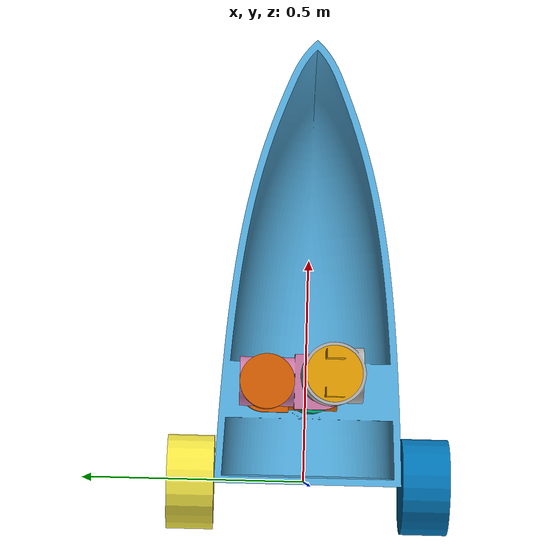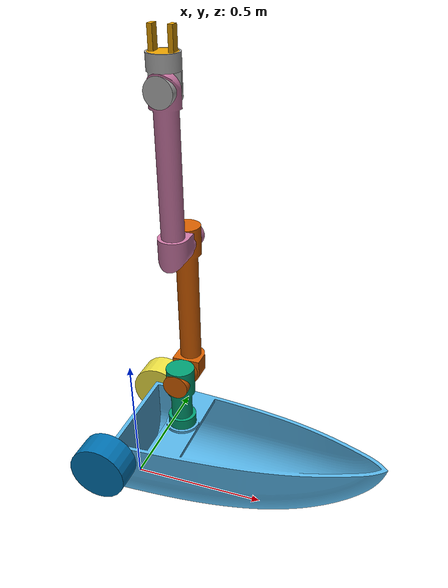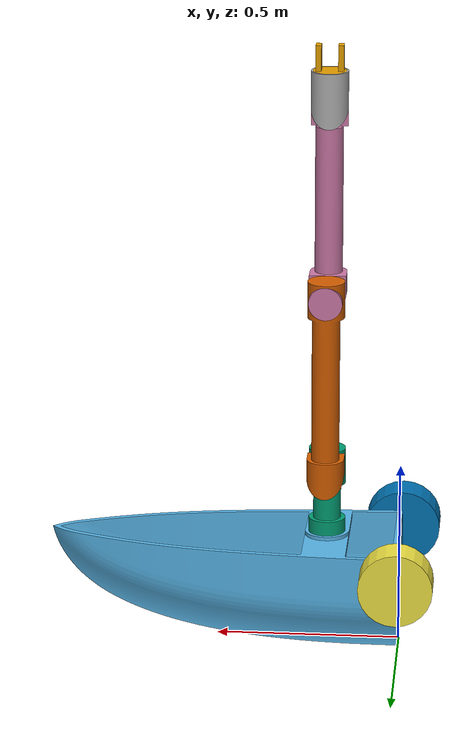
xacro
<?xml version="1.0" ?>

<robot name="robotikk_prosjekt" xmlns:xacro="http://ros.org/wiki/xacro">
    <xacro:include filename="$(find robotikk_prosjekt)/urdf/common_macros.xacro" />
    <xacro:include filename="$(find robotikk_prosjekt)/urdf/robot_control.gazebo.xacro" />
    <!-- CTRL + SHIFT + 7 to comment/uncomment marked code! -->
    <xacro:property name="density_pla" value="600" />

    <!-- MOBILE BOAT PLATFORM -->

    <link name="boat_footprint"/>

    <!-- MOBILE BOAT BASE -->

    <joint name="base_joint" type="fixed">
        <parent link="boat_footprint"/>
        <child link="mobile_boat_link" />
        <origin xyz="0 0 0" rpy="0 0 0"/>
    </joint>

    <link name="mobile_boat_link">
        <visual>
            <origin xyz="0 0 0" rpy="0 0 0"/>
            <geometry>
                <mesh filename="$(find robotikk_prosjekt)/meshes/BoatVisualMesh.stl" scale="0.001 0.001 0.001"/>
            </geometry>
        </visual>
        <collision>
            <origin xyz="0 0 0" rpy="0 0 0"/>
            <geometry>
                <mesh filename="$(find robotikk_prosjekt)/meshes/BoatColitionMesh.stl" scale="0.001 0.001 0.001"/>
            </geometry>
        </collision>
        <xacro:inertial_box length="1.0" width="0.400" height="0.300" density="${density_pla*10}">
            <origin xyz="0 0 0" rpy="0 0 0"/>
        </xacro:inertial_box>
    </link>

    <!-- ARM BASE -->

    <joint type="continuous" name="arm_base_joint">
        <origin xyz="0.2 0 0.3" rpy="0 0 0"/>
        <child link="arm_base_link"/>
        <parent link="mobile_boat_link"/>
        <axis xyz="0 0 1" rpy="0 0 0"/>
        <limit effort="1000" velocity="1000"/>
        <dynamics damping="0.7" friction="100.0"/>
    </joint>

    <link name="arm_base_link">
        <visual>
            <origin xyz="0 0 0" rpy="0 0 0"/>
            <geometry>
                <mesh filename="$(find robotikk_prosjekt)/meshes/BaseJoint.stl" scale="0.001 0.001 0.001"/>
            </geometry>
        </visual>
        <collision>
            <origin xyz="0 0 ${0.25/2}" rpy="0 0 0"/>
            <geometry>
                <cylinder length="0.25" radius="${0.1/2}" />
            </geometry>
        </collision>
        <xacro:inertial_cylinder radius="${0.1/2}" length="0.2" density="${density_pla}">
            <origin xyz="0 0 0" rpy="0 0 0"/>
        </xacro:inertial_cylinder>
    </link>

    <!-- LEFT WHEEL -->

    <joint type="continuous" name="left_wheel_joint">
        <origin xyz="0 ${0.2 + 0.1 / 2} 0.25" rpy="-${pi/2} 0 0"/>
        <child link="left_wheel_link"/>
        <parent link="mobile_boat_link"/>
        <axis xyz="0 0 1" rpy="0 0 0"/>
        <limit effort="1000" velocity="1000"/>
        <dynamics damping="0.7" friction="1.0"/>
    </joint>

    <link name="left_wheel_link">
        <visual>
            <origin xyz="0 0 0" rpy="0 0 0"/>
            <geometry>
                <cylinder length="0.1" radius="${0.201/2}" />
            </geometry>
        </visual>
        <collision>
            <origin xyz="0 0 0" rpy="0 0 0"/>
            <geometry>
                <cylinder length="0.1" radius="${0.201/2}" />
            </geometry>
        </collision>
        <xacro:inertial_box length="0.25" width="${0.2/2}" height="${0.2/2}" density="${density_pla}">
            <origin xyz="0 0 0" rpy="0 0 0"/>
        </xacro:inertial_box>
    </link>

    <!-- RIGHT WHEEL -->

    <joint type="continuous" name="right_wheel_joint">
        <origin xyz="0 -${0.2 + 0.1 / 2} 0.25" rpy="-${pi/2} 0 0"/>
        <child link="right_wheel_link"/>
        <parent link="mobile_boat_link"/>
        <axis xyz="0 0 1" rpy="0 0 0"/>
        <limit effort="1000" velocity="1000"/>
        <dynamics damping="0.7" friction="1.0"/>
    </joint>

    <link name="right_wheel_link">
        <visual>
            <origin xyz="0 0 0" rpy="0 0 0"/>
            <geometry>
                <cylinder length="0.1" radius="${0.205/2}" />
            </geometry>
        </visual>
        <collision>
            <origin xyz="0 0 0" rpy="0 0 0"/>
            <geometry>
                <cylinder length="0.1" radius="${0.205/2}" />
            </geometry>
        </collision>
        <xacro:inertial_box length="0.25" width="${0.2/2}" height="${0.2/2}" density="${density_pla}">
            <origin xyz="0 0 0" rpy="0 0 0"/>
        </xacro:inertial_box>
    </link>

    <!-- ARM 1 -->

    <joint type="continuous" name="arm_1_joint">
        <origin xyz="0 0.1 0.2" rpy="${-pi/2} 0 0"/>
        <child link="arm_1_link"/>
        <parent link="arm_base_link"/>
        <axis xyz="0 0 1" rpy="0 0 0"/>
        <limit effort="1000" velocity="1000"/>
        <dynamics damping="0.7" friction="100.0"/>
    </joint>

    <link name="arm_1_link">
        <visual>
            <origin xyz="0 0 0" rpy="0 0 0"/>
            <geometry>
                <mesh filename="$(find robotikk_prosjekt)/meshes/Arm1.stl" scale="0.001 0.001 0.001"/>
            </geometry>
        </visual>
        <collision>
            <origin xyz="0 ${-0.5/2} 0" rpy="${pi/2} 0 0"/>
            <geometry>
                <cylinder length="0.6" radius="${0.1/2}" />
            </geometry>
        </collision>
        <xacro:inertial_cylinder length="0.6" radius="${0.1/2}" density="${density_pla}">
            <origin xyz="0 ${-0.5/2} 0" rpy="${pi/2} 0 0"/>
        </xacro:inertial_cylinder>
    </link>

    <!-- ARM 2 -->

    <joint type="continuous" name="arm_2_joint">
        <origin xyz="0 -0.5 -0.1" rpy="0 0 0"/>
        <child link="arm_2_link"/>
        <parent link="arm_1_link"/>
        <axis xyz="0 0 1" rpy="0 0 0"/>
        <limit effort="1000" velocity="1000"/>
        <dynamics damping="0.7" friction="100.0"/>
    </joint>

    <link name="arm_2_link">
        <visual>
            <origin xyz="0 0 0" rpy="0 0 0"/>
            <geometry>
                <mesh filename="$(find robotikk_prosjekt)/meshes/Arm2.stl" scale="0.001 0.001 0.001"/>
            </geometry>
        </visual>
        <collision>
            <origin xyz="0 ${-0.5/2} 0" rpy="${pi/2} 0 0"/>
            <geometry>
                <cylinder length="0.6" radius="${0.1/2}" />
            </geometry>
        </collision>
        <xacro:inertial_cylinder length="0.6" radius="${0.1/2}" density="${density_pla}">
            <origin xyz="0 ${-0.5/2} 0" rpy="${pi/2} 0 0"/>
        </xacro:inertial_cylinder>
    </link>

    <!-- WRIST JOINT -->

    <joint type="continuous" name="wrist_joint_joint">
        <origin xyz="0 -0.5 0" rpy="0 0 0"/>
        <child link="wrist_joint_link"/>
        <parent link="arm_2_link"/>
        <axis xyz="0 0 1" rpy="0 0 0"/>
        <limit effort="1000" velocity="1000"/>
        <dynamics damping="0.7" friction="100.0"/>
    </joint>

    <link name="wrist_joint_link">
        <visual>
            <origin xyz="0 0 0" rpy="0 0 0"/>
            <geometry>
                <mesh filename="$(find robotikk_prosjekt)/meshes/WristJoint.stl" scale="0.001 0.001 0.001"/>
            </geometry>
        </visual>
        <collision>
            <origin xyz="0 ${-0.1/2} 0" rpy="${pi/2} 0 0"/>
            <geometry>
                <cylinder length="0.1" radius="${0.1/2}" />
            </geometry>
        </collision>
        <xacro:inertial_cylinder length="0.1" radius="${0.1/2}" density="${density_pla}">
            <origin xyz="0 ${-0.1/2} 0" rpy="${pi/2} 0 0"/>
        </xacro:inertial_cylinder>
    </link>

    <!-- GRIPPER -->

    <joint type="continuous" name="gripper_joint">
        <origin xyz="0 -0.1 0" rpy="${pi/2} 0 0"/>
        <child link="gripper_link"/>
        <parent link="wrist_joint_link"/>
        <axis xyz="0 0 1" rpy="0 0 0"/>
        <limit effort="1000" velocity="1000"/>
        <dynamics damping="0.7" friction="100.0"/>
    </joint>

    <link name="gripper_link">
        <visual>
            <origin xyz="0 0 0" rpy="0 0 0"/>
            <geometry>
                <mesh filename="$(find robotikk_prosjekt)/meshes/Gripper.stl" scale="0.001 0.001 0.001"/>
            </geometry>
        </visual>
        <collision>
            <origin xyz="0 0 0.035" rpy="0 0 0"/>
            <geometry>
                <cylinder length="${0.15/2}" radius="${0.09/2}" />
            </geometry>
        </collision>
        <xacro:inertial_cylinder length="${0.15/2}" radius="${0.09/2}" density="${density_pla}">
            <origin xyz="0 ${-0.1/2} 0" rpy="${pi/2} 0 0"/>
        </xacro:inertial_cylinder>
    </link>
</robot>
